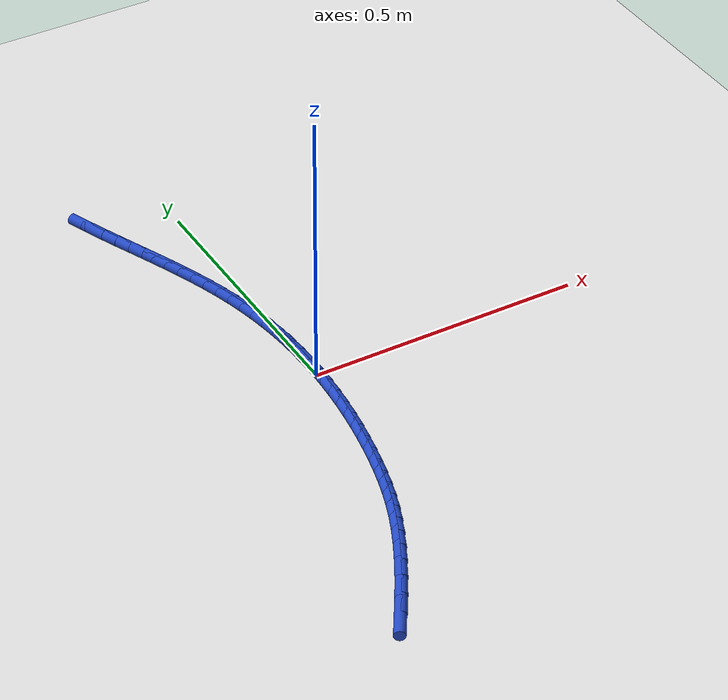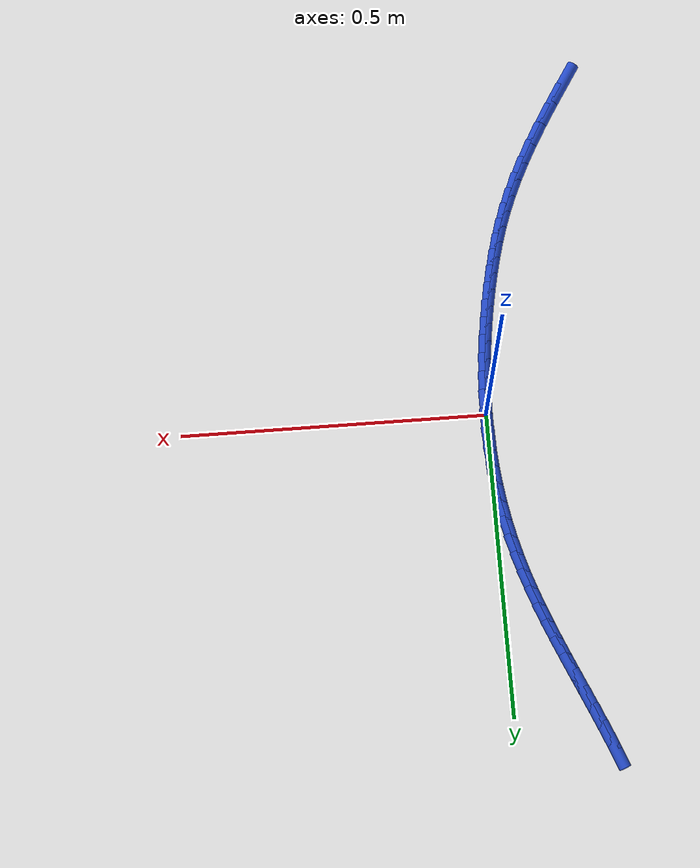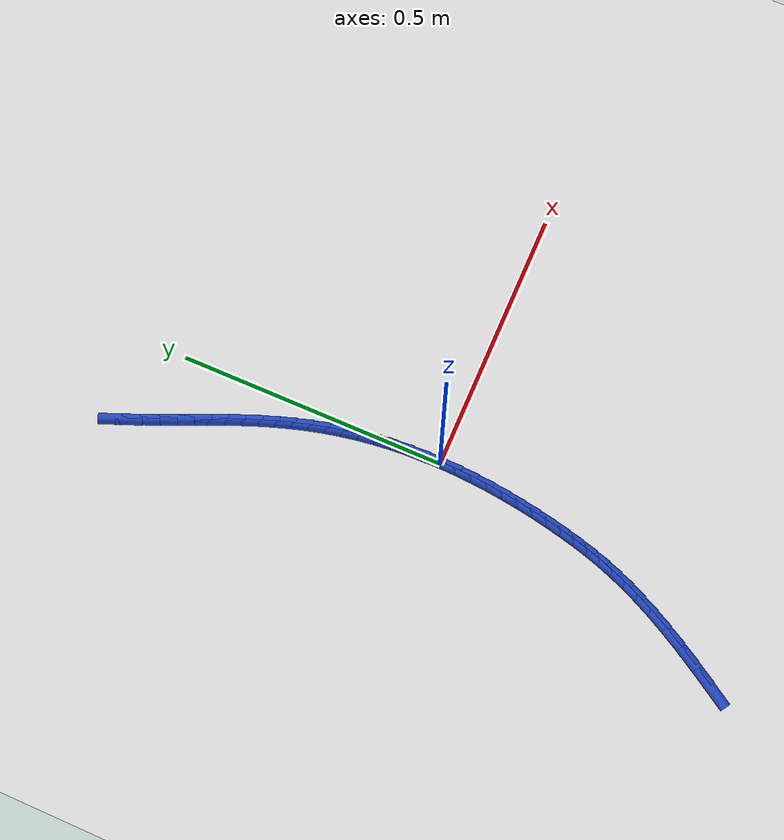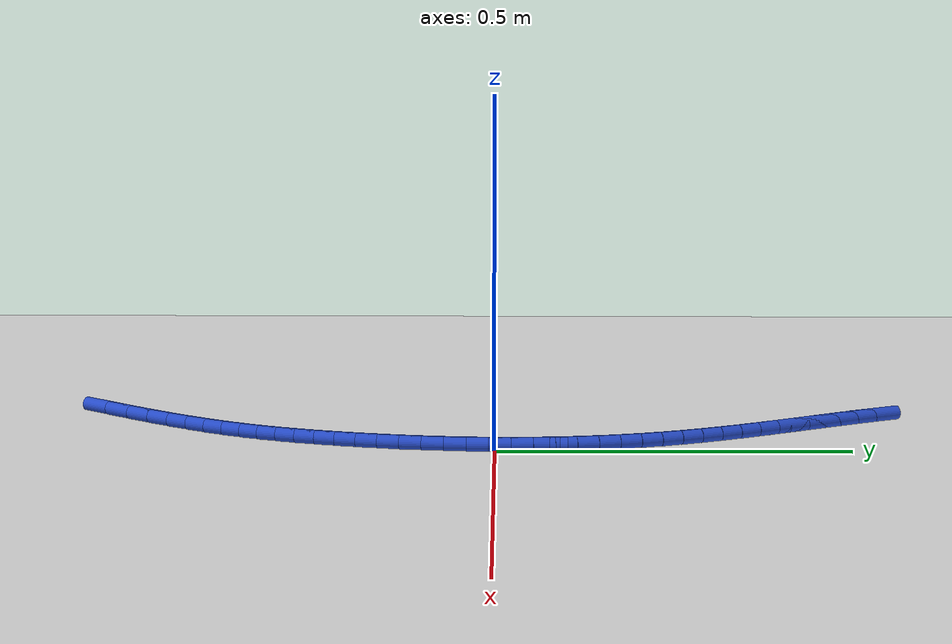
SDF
<sdf version="1.6">
 <world name="default">
  <model name="ground_plane">
   <static>1</static>
   <link name="link">
    <collision name="collision">
     <geometry><plane><normal>0 0 1</normal><size>100 100</size></plane></geometry>
     <surface><friction><ode><mu>100</mu><mu2>50</mu2></ode></friction></surface>
    </collision>
    <visual name="visual">
     <cast_shadows>0</cast_shadows>
     <geometry><plane><normal>0 0 1</normal><size>100 100</size></plane></geometry>
     <material>
      <script><uri>file://media/materials/scripts/gazebo.material</uri><name>Gazebo/WhiteGlow</name></script>
     </material>
    </visual>
   </link>
  </model>
  <model name="line">
   <link name="link_0">
    <pose>9.107298248878237e-18 6.938893903907228e-18 0.01 0 1.57 -1.5668264319362275</pose>
    <collision name="collision">
     <geometry><cylinder><radius>0.01</radius><length>0.08</length></cylinder></geometry>
    </collision>
    <visual name="visual">
     <material>
      <script><name>Gazebo/Blue</name><uri>file://media/materials/scripts/gazebo.material</uri></script>
     </material>
     <geometry><cylinder><radius>0.01</radius><length>0.08</length></cylinder></geometry>
    </visual>
   </link>
   <link name="link_1">
    <pose>-0.0001239343897816787 0.03121839321235804 0.01 0 1.57 -1.5336156372987675</pose>
    <collision name="collision">
     <geometry><cylinder><radius>0.01</radius><length>0.08</length></cylinder></geometry>
    </collision>
    <visual name="visual">
     <material>
      <script><name>Gazebo/Blue</name><uri>file://media/materials/scripts/gazebo.material</uri></script>
     </material>
     <geometry><cylinder><radius>0.01</radius><length>0.08</length></cylinder></geometry>
    </visual>
   </link>
   <link name="link_2">
    <pose>-0.0012786598578444545 0.06226120967839678 0.01 0 1.57 -1.5000217866941261</pose>
    <collision name="collision">
     <geometry><cylinder><radius>0.01</radius><length>0.08</length></cylinder></geometry>
    </collision>
    <visual name="visual">
     <material>
      <script><name>Gazebo/Blue</name><uri>file://media/materials/scripts/gazebo.material</uri></script>
     </material>
     <geometry><cylinder><radius>0.01</radius><length>0.08</length></cylinder></geometry>
    </visual>
   </link>
   <link name="link_3">
    <pose>-0.0034647279923184075 0.09309739569848534 0.01 0 1.57 -1.466014178215032</pose>
    <collision name="collision">
     <geometry><cylinder><radius>0.01</radius><length>0.08</length></cylinder></geometry>
    </collision>
    <visual name="visual">
     <material>
      <script><name>Gazebo/Blue</name><uri>file://media/materials/scripts/gazebo.material</uri></script>
     </material>
     <geometry><cylinder><radius>0.01</radius><length>0.08</length></cylinder></geometry>
    </visual>
   </link>
   <link name="link_4">
    <pose>-0.00668269038133363 0.12369589757299287 0.01 0 1.57 -1.431563237630267</pose>
    <collision name="collision">
     <geometry><cylinder><radius>0.01</radius><length>0.08</length></cylinder></geometry>
    </collision>
    <visual name="visual">
     <material>
      <script><name>Gazebo/Blue</name><uri>file://media/materials/scripts/gazebo.material</uri></script>
     </material>
     <geometry><cylinder><radius>0.01</radius><length>0.08</length></cylinder></geometry>
    </visual>
   </link>
   <link name="link_5">
    <pose>-0.010933098613020211 0.15402566160228848 0.01 0 1.57 -1.3966409248389513</pose>
    <collision name="collision">
     <geometry><cylinder><radius>0.01</radius><length>0.08</length></cylinder></geometry>
    </collision>
    <visual name="visual">
     <material>
      <script><name>Gazebo/Blue</name><uri>file://media/materials/scripts/gazebo.material</uri></script>
     </material>
     <geometry><cylinder><radius>0.01</radius><length>0.08</length></cylinder></geometry>
    </visual>
   </link>
   <link name="link_6">
    <pose>-0.016216504275508237 0.1840556340867413 0.01 0 1.57 -1.361221183132592</pose>
    <collision name="collision">
     <geometry><cylinder><radius>0.01</radius><length>0.08</length></cylinder></geometry>
    </collision>
    <visual name="visual">
     <material>
      <script><name>Gazebo/Blue</name><uri>file://media/materials/scripts/gazebo.material</uri></script>
     </material>
     <geometry><cylinder><radius>0.01</radius><length>0.08</length></cylinder></geometry>
    </visual>
   </link>
   <link name="link_7">
    <pose>-0.022533458956927797 0.2137547613267204 0.01 0 1.57 -1.3252804313621547</pose>
    <collision name="collision">
     <geometry><cylinder><radius>0.01</radius><length>0.08</length></cylinder></geometry>
    </collision>
    <visual name="visual">
     <material>
      <script><name>Gazebo/Blue</name><uri>file://media/materials/scripts/gazebo.material</uri></script>
     </material>
     <geometry><cylinder><radius>0.01</radius><length>0.08</length></cylinder></geometry>
    </visual>
   </link>
   <link name="link_8">
    <pose>-0.029884514245408993 0.24309198962259496 0.01 0 1.57 -1.2892531438019739</pose>
    <collision name="collision">
     <geometry><cylinder><radius>0.01</radius><length>0.08</length></cylinder></geometry>
    </collision>
    <visual name="visual">
     <material>
      <script><name>Gazebo/Blue</name><uri>file://media/materials/scripts/gazebo.material</uri></script>
     </material>
     <geometry><cylinder><radius>0.01</radius><length>0.08</length></cylinder></geometry>
    </visual>
   </link>
   <link name="link_9">
    <pose>-0.038258478292713394 0.2720450169516937 0.01 0 1.57 -1.2564737234000498</pose>
    <collision name="collision">
     <geometry><cylinder><radius>0.01</radius><length>0.08</length></cylinder></geometry>
    </collision>
    <visual name="visual">
     <material>
      <script><name>Gazebo/Blue</name><uri>file://media/materials/scripts/gazebo.material</uri></script>
     </material>
     <geometry><cylinder><radius>0.01</radius><length>0.08</length></cylinder></geometry>
    </visual>
   </link>
   <link name="link_10">
    <pose>-0.04755947796184524 0.3006546491637325 0.01 0 1.57 -1.2285402740778695</pose>
    <collision name="collision">
     <geometry><cylinder><radius>0.01</radius><length>0.08</length></cylinder></geometry>
    </collision>
    <visual name="visual">
     <material>
      <script><name>Gazebo/Blue</name><uri>file://media/materials/scripts/gazebo.material</uri></script>
     </material>
     <geometry><cylinder><radius>0.01</radius><length>0.08</length></cylinder></geometry>
    </visual>
   </link>
   <link name="link_11">
    <pose>-0.057654495937476395 0.32898937343095475 0.01 0 1.57 -1.205567716084735</pose>
    <collision name="collision">
     <geometry><cylinder><radius>0.01</radius><length>0.08</length></cylinder></geometry>
    </collision>
    <visual name="visual">
     <material>
      <script><name>Gazebo/Blue</name><uri>file://media/materials/scripts/gazebo.material</uri></script>
     </material>
     <geometry><cylinder><radius>0.01</radius><length>0.08</length></cylinder></geometry>
    </visual>
   </link>
   <link name="link_12">
    <pose>-0.06841035637510524 0.35711779506786373 0.01 0 1.57 -1.1876060721746942</pose>
    <collision name="collision">
     <geometry><cylinder><radius>0.01</radius><length>0.08</length></cylinder></geometry>
    </collision>
    <visual name="visual">
     <material>
      <script><name>Gazebo/Blue</name><uri>file://media/materials/scripts/gazebo.material</uri></script>
     </material>
     <geometry><cylinder><radius>0.01</radius><length>0.08</length></cylinder></geometry>
    </visual>
   </link>
   <link name="link_13">
    <pose>-0.07969388343023011 0.3851085193889631 0.01 0 1.57 -1.1746630989366824</pose>
    <collision name="collision">
     <geometry><cylinder><radius>0.01</radius><length>0.08</length></cylinder></geometry>
    </collision>
    <visual name="visual">
     <material>
      <script><name>Gazebo/Blue</name><uri>file://media/materials/scripts/gazebo.material</uri></script>
     </material>
     <geometry><cylinder><radius>0.01</radius><length>0.08</length></cylinder></geometry>
    </visual>
   </link>
   <link name="link_14">
    <pose>-0.09137190125834933 0.41303015170875623 0.01 0 1.57 -1.1667179222728319</pose>
    <collision name="collision">
     <geometry><cylinder><radius>0.01</radius><length>0.08</length></cylinder></geometry>
    </collision>
    <visual name="visual">
     <material>
      <script><name>Gazebo/Blue</name><uri>file://media/materials/scripts/gazebo.material</uri></script>
     </material>
     <geometry><cylinder><radius>0.01</radius><length>0.08</length></cylinder></geometry>
    </visual>
   </link>
   <link name="link_15">
    <pose>-0.10331123401496135 0.44095129734174665 0.01 0 1.57 -1.1637311236688281</pose>
    <collision name="collision">
     <geometry><cylinder><radius>0.01</radius><length>0.08</length></cylinder></geometry>
    </collision>
    <visual name="visual">
     <material>
      <script><name>Gazebo/Blue</name><uri>file://media/materials/scripts/gazebo.material</uri></script>
     </material>
     <geometry><cylinder><radius>0.01</radius><length>0.08</length></cylinder></geometry>
    </visual>
   </link>
   <link name="link_16">
    <pose>-0.11537870585556448 0.4689405616024379 0.01 0 1.57 -1.1656510495082053</pose>
    <collision name="collision">
     <geometry><cylinder><radius>0.01</radius><length>0.08</length></cylinder></geometry>
    </collision>
    <visual name="visual">
     <material>
      <script><name>Gazebo/Blue</name><uri>file://media/materials/scripts/gazebo.material</uri></script>
     </material>
     <geometry><cylinder><radius>0.01</radius><length>0.08</length></cylinder></geometry>
    </visual>
   </link>
   <link name="link_17">
    <pose>-0.12744114093565703 0.4970665498053333 0.01 0 1.57 -1.1724164000558142</pose>
    <collision name="collision">
     <geometry><cylinder><radius>0.01</radius><length>0.08</length></cylinder></geometry>
    </collision>
    <visual name="visual">
     <material>
      <script><name>Gazebo/Blue</name><uri>file://media/materials/scripts/gazebo.material</uri></script>
     </material>
     <geometry><cylinder><radius>0.01</radius><length>0.08</length></cylinder></geometry>
    </visual>
   </link>
   <link name="link_18">
    <pose>-0.13936536341073744 0.5253978672649364 0.01 0 1.57 -1.1839553151728444</pose>
    <collision name="collision">
     <geometry><cylinder><radius>0.01</radius><length>0.08</length></cylinder></geometry>
    </collision>
    <visual name="visual">
     <material>
      <script><name>Gazebo/Blue</name><uri>file://media/materials/scripts/gazebo.material</uri></script>
     </material>
     <geometry><cylinder><radius>0.01</radius><length>0.08</length></cylinder></geometry>
    </visual>
   </link>
   <link name="link_19">
    <pose>-0.15101819743630393 0.5540031192957506 0.01 0 1.57 -1.2001812779899876</pose>
    <collision name="collision">
     <geometry><cylinder><radius>0.01</radius><length>0.08</length></cylinder></geometry>
    </collision>
    <visual name="visual">
     <material>
      <script><name>Gazebo/Blue</name><uri>file://media/materials/scripts/gazebo.material</uri></script>
     </material>
     <geometry><cylinder><radius>0.01</radius><length>0.08</length></cylinder></geometry>
    </visual>
   </link>
   <link name="link_231">
    <pose>-0.18098639549923046 -0.5763534451300245 0.01 0 1.57 1.0093967781470057</pose>
    <collision name="collision">
     <geometry><cylinder><radius>0.01</radius><length>0.08</length></cylinder></geometry>
    </collision>
    <visual name="visual">
     <material>
      <script><name>Gazebo/Blue</name><uri>file://media/materials/scripts/gazebo.material</uri></script>
     </material>
     <geometry><cylinder><radius>0.01</radius><length>0.08</length></cylinder></geometry>
    </visual>
   </link>
   <link name="link_232">
    <pose>-0.1573517151459156 -0.5387725163861108 0.01 0 1.57 1.0303491121042587</pose>
    <collision name="collision">
     <geometry><cylinder><radius>0.01</radius><length>0.08</length></cylinder></geometry>
    </collision>
    <visual name="visual">
     <material>
      <script><name>Gazebo/Blue</name><uri>file://media/materials/scripts/gazebo.material</uri></script>
     </material>
     <geometry><cylinder><radius>0.01</radius><length>0.08</length></cylinder></geometry>
    </visual>
   </link>
   <link name="link_233">
    <pose>-0.1357952511283817 -0.5028473331911495 0.01 0 1.57 1.055064523966169</pose>
    <collision name="collision">
     <geometry><cylinder><radius>0.01</radius><length>0.08</length></cylinder></geometry>
    </collision>
    <visual name="visual">
     <material>
      <script><name>Gazebo/Blue</name><uri>file://media/materials/scripts/gazebo.material</uri></script>
     </material>
     <geometry><cylinder><radius>0.01</radius><length>0.08</length></cylinder></geometry>
    </visual>
   </link>
   <link name="link_234">
    <pose>-0.11661252753239512 -0.4690098898196318 0.01 0 1.57 1.084455989899875</pose>
    <collision name="collision">
     <geometry><cylinder><radius>0.01</radius><length>0.08</length></cylinder></geometry>
    </collision>
    <visual name="visual">
     <material>
      <script><name>Gazebo/Blue</name><uri>file://media/materials/scripts/gazebo.material</uri></script>
     </material>
     <geometry><cylinder><radius>0.01</radius><length>0.08</length></cylinder></geometry>
    </visual>
   </link>
   <link name="link_235">
    <pose>-0.09987357713036862 -0.4373490930757494 0.01 0 1.57 1.117909439301364</pose>
    <collision name="collision">
     <geometry><cylinder><radius>0.01</radius><length>0.08</length></cylinder></geometry>
    </collision>
    <visual name="visual">
     <material>
      <script><name>Gazebo/Blue</name><uri>file://media/materials/scripts/gazebo.material</uri></script>
     </material>
     <geometry><cylinder><radius>0.01</radius><length>0.08</length></cylinder></geometry>
    </visual>
   </link>
   <link name="link_236">
    <pose>-0.08534340540013317 -0.4074897474383581 0.01 0 1.57 1.1547311112139926</pose>
    <collision name="collision">
     <geometry><cylinder><radius>0.01</radius><length>0.08</length></cylinder></geometry>
    </collision>
    <visual name="visual">
     <material>
      <script><name>Gazebo/Blue</name><uri>file://media/materials/scripts/gazebo.material</uri></script>
     </material>
     <geometry><cylinder><radius>0.01</radius><length>0.08</length></cylinder></geometry>
    </visual>
   </link>
   <link name="link_237">
    <pose>-0.07276536732064624 -0.37902371591828676 0.01 0 1.57 1.1937388504060746</pose>
    <collision name="collision">
     <geometry><cylinder><radius>0.01</radius><length>0.08</length></cylinder></geometry>
    </collision>
    <visual name="visual">
     <material>
      <script><name>Gazebo/Blue</name><uri>file://media/materials/scripts/gazebo.material</uri></script>
     </material>
     <geometry><cylinder><radius>0.01</radius><length>0.08</length></cylinder></geometry>
    </visual>
   </link>
   <link name="link_238">
    <pose>-0.061882817870865456 -0.3515428615263643 0.01 0 1.57 1.2332154613869106</pose>
    <collision name="collision">
     <geometry><cylinder><radius>0.01</radius><length>0.08</length></cylinder></geometry>
    </collision>
    <visual name="visual">
     <material>
      <script><name>Gazebo/Blue</name><uri>file://media/materials/scripts/gazebo.material</uri></script>
     </material>
     <geometry><cylinder><radius>0.01</radius><length>0.08</length></cylinder></geometry>
    </visual>
   </link>
   <link name="link_239">
    <pose>-0.052439112029748346 -0.32463904727341963 0.01 0 1.57 1.2710889091024786</pose>
    <collision name="collision">
     <geometry><cylinder><radius>0.01</radius><length>0.08</length></cylinder></geometry>
    </collision>
    <visual name="visual">
     <material>
      <script><name>Gazebo/Blue</name><uri>file://media/materials/scripts/gazebo.material</uri></script>
     </material>
     <geometry><cylinder><radius>0.01</radius><length>0.08</length></cylinder></geometry>
    </visual>
   </link>
   <link name="link_240">
    <pose>-0.044177604776252655 -0.2979041361702824 0.01 0 1.57 1.305256318848344</pose>
    <collision name="collision">
     <geometry><cylinder><radius>0.01</radius><length>0.08</length></cylinder></geometry>
    </collision>
    <visual name="visual">
     <material>
      <script><name>Gazebo/Blue</name><uri>file://media/materials/scripts/gazebo.material</uri></script>
     </material>
     <geometry><cylinder><radius>0.01</radius><length>0.08</length></cylinder></geometry>
    </visual>
   </link>
   <link name="link_241">
    <pose>-0.036841651089335514 -0.27092999122777994 0.01 0 1.57 1.3339628874222187</pose>
    <collision name="collision">
     <geometry><cylinder><radius>0.01</radius><length>0.08</length></cylinder></geometry>
    </collision>
    <visual name="visual">
     <material>
      <script><name>Gazebo/Blue</name><uri>file://media/materials/scripts/gazebo.material</uri></script>
     </material>
     <geometry><cylinder><radius>0.01</radius><length>0.08</length></cylinder></geometry>
    </visual>
   </link>
   <link name="link_242">
    <pose>-0.030174992473377973 -0.24330912158068746 0.01 0 1.57 1.3579995970235088</pose>
    <collision name="collision">
     <geometry><cylinder><radius>0.01</radius><length>0.08</length></cylinder></geometry>
    </collision>
    <visual name="visual">
     <material>
      <script><name>Gazebo/Blue</name><uri>file://media/materials/scripts/gazebo.material</uri></script>
     </material>
     <geometry><cylinder><radius>0.01</radius><length>0.08</length></cylinder></geometry>
    </visual>
   </link>
   <link name="link_243">
    <pose>-0.02401193527287193 -0.21478542643617465 0.01 0 1.57 1.3815688973383222</pose>
    <collision name="collision">
     <geometry><cylinder><radius>0.01</radius><length>0.08</length></cylinder></geometry>
    </collision>
    <visual name="visual">
     <material>
      <script><name>Gazebo/Blue</name><uri>file://media/materials/scripts/gazebo.material</uri></script>
     </material>
     <geometry><cylinder><radius>0.01</radius><length>0.08</length></cylinder></geometry>
    </visual>
   </link>
   <link name="link_244">
    <pose>-0.018393255532839003 -0.18544794405175727 0.01 0 1.57 1.4055666495157064</pose>
    <collision name="collision">
     <geometry><cylinder><radius>0.01</radius><length>0.08</length></cylinder></geometry>
    </collision>
    <visual name="visual">
     <material>
      <script><name>Gazebo/Blue</name><uri>file://media/materials/scripts/gazebo.material</uri></script>
     </material>
     <geometry><cylinder><radius>0.01</radius><length>0.08</length></cylinder></geometry>
    </visual>
   </link>
   <link name="link_245">
    <pose>-0.013388362114661753 -0.15543357589694856 0.01 0 1.57 1.430285439082341</pose>
    <collision name="collision">
     <geometry><cylinder><radius>0.01</radius><length>0.08</length></cylinder></geometry>
    </collision>
    <visual name="visual">
     <material>
      <script><name>Gazebo/Blue</name><uri>file://media/materials/scripts/gazebo.material</uri></script>
     </material>
     <geometry><cylinder><radius>0.01</radius><length>0.08</length></cylinder></geometry>
    </visual>
   </link>
   <link name="link_246">
    <pose>-0.009066663879722728 -0.12487922344126179 0.01 0 1.57 1.4560127288042528</pose>
    <collision name="collision">
     <geometry><cylinder><radius>0.01</radius><length>0.08</length></cylinder></geometry>
    </collision>
    <visual name="visual">
     <material>
      <script><name>Gazebo/Blue</name><uri>file://media/materials/scripts/gazebo.material</uri></script>
     </material>
     <geometry><cylinder><radius>0.01</radius><length>0.08</length></cylinder></geometry>
    </visual>
   </link>
   <link name="link_247">
    <pose>-0.005497569689404482 -0.09392178815421023 0.01 0 1.57 1.483041407102734</pose>
    <collision name="collision">
     <geometry><cylinder><radius>0.01</radius><length>0.08</length></cylinder></geometry>
    </collision>
    <visual name="visual">
     <material>
      <script><name>Gazebo/Blue</name><uri>file://media/materials/scripts/gazebo.material</uri></script>
     </material>
     <geometry><cylinder><radius>0.01</radius><length>0.08</length></cylinder></geometry>
    </visual>
   </link>
   <link name="link_248">
    <pose>-0.0027504884050895792 -0.06269817150530728 0.01 0 1.57 1.5116790691593953</pose>
    <collision name="collision">
     <geometry><cylinder><radius>0.01</radius><length>0.08</length></cylinder></geometry>
    </collision>
    <visual name="visual">
     <material>
      <script><name>Gazebo/Blue</name><uri>file://media/materials/scripts/gazebo.material</uri></script>
     </material>
     <geometry><cylinder><radius>0.01</radius><length>0.08</length></cylinder></geometry>
    </visual>
   </link>
   <link name="link_249">
    <pose>-0.0008948288881605606 -0.03134527496406608 0.01 0 1.57 1.542256589147337</pose>
    <collision name="collision">
     <geometry><cylinder><radius>0.01</radius><length>0.08</length></cylinder></geometry>
    </collision>
    <visual name="visual">
     <material>
      <script><name>Gazebo/Blue</name><uri>file://media/materials/scripts/gazebo.material</uri></script>
     </material>
     <geometry><cylinder><radius>0.01</radius><length>0.08</length></cylinder></geometry>
    </visual>
   </link>
   <link name="link_250">
    <pose>9.107298248878237e-18 -4.85722573273506e-17 0.01 0 1.57 -1.5664563752390193</pose>
    <collision name="collision">
     <geometry><cylinder><radius>0.01</radius><length>0.08</length></cylinder></geometry>
    </collision>
    <visual name="visual">
     <material>
      <script><name>Gazebo/Blue</name><uri>file://media/materials/scripts/gazebo.material</uri></script>
     </material>
     <geometry><cylinder><radius>0.01</radius><length>0.08</length></cylinder></geometry>
    </visual>
   </link>
   <link name="link_251">
    <pose>-0.00013541060199042353 0.0312007519173776 0.01 0 1.57 -1.530872990424919</pose>
    <collision name="collision">
     <geometry><cylinder><radius>0.01</radius><length>0.08</length></cylinder></geometry>
    </collision>
    <visual name="visual">
     <material>
      <script><name>Gazebo/Blue</name><uri>file://media/materials/scripts/gazebo.material</uri></script>
     </material>
     <geometry><cylinder><radius>0.01</radius><length>0.08</length></cylinder></geometry>
    </visual>
   </link>
   <link name="link_252">
    <pose>-0.001370469555514408 0.06212007931855357 0.01 0 1.57 -1.5487382854541363</pose>
    <collision name="collision">
     <geometry><cylinder><radius>0.01</radius><length>0.08</length></cylinder></geometry>
    </collision>
    <visual name="visual">
     <material>
      <script><name>Gazebo/Blue</name><uri>file://media/materials/scripts/gazebo.material</uri></script>
     </material>
     <geometry><cylinder><radius>0.01</radius><length>0.08</length></cylinder></geometry>
    </visual>
   </link>
  </model>
 </world>
</sdf>
